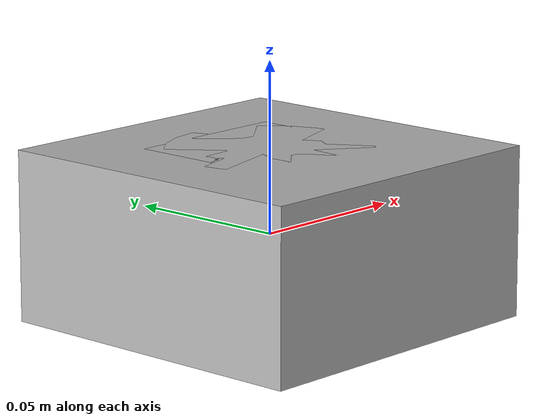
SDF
<?xml version="1.0" ?>
<sdf version="1.10">
  <model name="pantilt">

    <static>false</static>

    <!-- Base -->
    <link name="base_link">
      <inertial>
        <mass>1.0</mass>
        <inertia>
          <ixx>0.01</ixx><iyy>0.01</iyy><izz>0.01</izz>
        </inertia>
      </inertial>
      <visual name="base_visual">
        <geometry>
          <box><size>0.1 0.1 0.05</size></box>
        </geometry>
      </visual>
    </link>

    <!-- Pan Link -->
    <link name="pan_link">
      <visual name="pan_visual">
        <geometry>
          <cylinder><radius>0.03</radius><length>0.05</length></cylinder>
        </geometry>
      </visual>
    </link>

    <joint name="pan_joint" type="revolute">
      <parent>base_link</parent>
      <child>pan_link</child>
      <axis>
        <xyz>0 0 1</xyz>
        <limit>
          <lower>-3.14</lower>
          <upper>3.14</upper>
        </limit>
      </axis>
    </joint>

    <!-- Tilt Link -->
    <link name="tilt_link">
      <visual name="tilt_visual">
        <geometry>
          <box><size>0.05 0.05 0.05</size></box>
        </geometry>
      </visual>

      <!-- Camera -->
      <sensor name="camera" type="camera">
        <camera>
          <horizontal_fov>1.047</horizontal_fov>
          <image>
            <width>640</width>
            <height>480</height>
            <format>R8G8B8</format>
          </image>
          <clip>
            <near>0.1</near>
            <far>100</far>
          </clip>
        </camera>
        <always_on>1</always_on>
        <update_rate>30</update_rate>
      </sensor>
    </link>

    <joint name="tilt_joint" type="revolute">
      <parent>pan_link</parent>
      <child>tilt_link</child>
      <axis>
        <xyz>0 1 0</xyz>
        <limit>
          <lower>-1.57</lower>
          <upper>1.57</upper>
        </limit>
      </axis>
    </joint>

    <!-- Position Controllers -->
    <plugin filename="gz-sim-joint-position-controller-system"
            name="gz::sim::systems::JointPositionController">
      <joint_name>pan_joint</joint_name>
      <p_gain>10</p_gain>
    </plugin>

    <plugin filename="gz-sim-joint-position-controller-system"
            name="gz::sim::systems::JointPositionController">
      <joint_name>tilt_joint</joint_name>
      <p_gain>10</p_gain>
    </plugin>

  </model>
</sdf>
